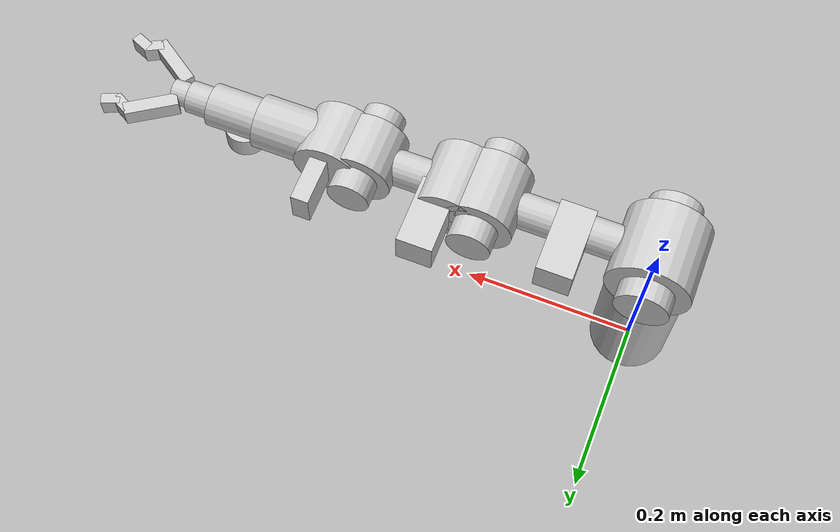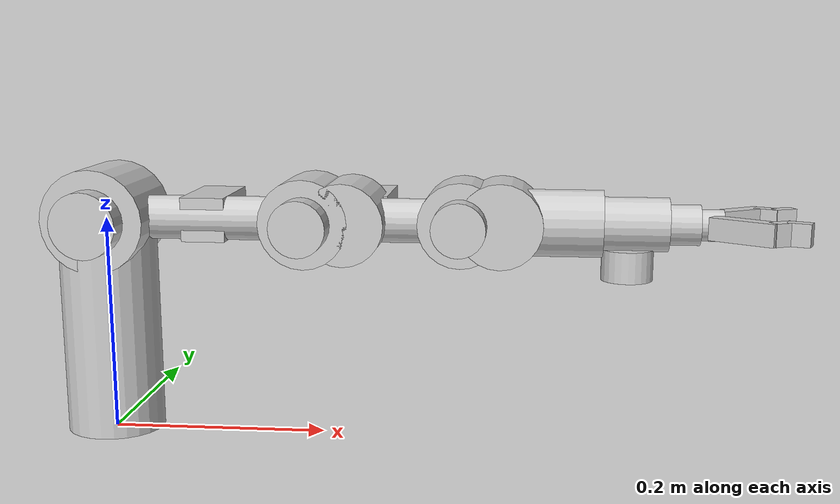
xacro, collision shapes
<?xml version="1.0"?>

<robot xmlns:xacro="http://ros.org/wiki/xacro"
      name="katana_450_6m180">

  <xacro:include filename="$(find katana_description)/urdf/transmissions.urdf.xacro"/>
  <xacro:include filename="$(find katana_description)/urdf/gazebo.urdf.xacro"/>

  <property name="M_PI" value="3.1415926535897931" />

  <!-- all values from the katana manual -->
  <property name="base_height" value="0.2015" />
  <property name="link2_length" value="0.19" />
  <property name="link3_length" value="0.139" />
  <property name="link4_length" value="0.1473" />
  <property name="link5_length" value="0.1505" />
  <property name="tool_frame_offset" value="0.075" />

  <!-- All inertial values (mass, center of mass and inertia tensor) have been
  calculated from the meshes using MeshLab -->
  <!-- the effort limits have been measured experimentally from the maximum effort the Gazebo controller
  uses in normal conditions -->

  <link name="katana_base_link">
    <visual>
      <origin xyz="0 0 0" rpy="0 0 0" />
      <geometry>
	<mesh filename="package://katana_description/meshes/katana/katana_base_link.stl"/>
      </geometry>

      <material name="grey">
	<color rgba="0.8 0.8 0.8 1"/>
      </material>
    </visual>
    <collision>
      <origin xyz="0 0 0.1" rpy="0 0 0" />
      <geometry>
	<cylinder radius="0.045" length="0.20"/>
      </geometry>
    </collision>
    <inertial>
      <mass value="1.4047990875" />
      <origin xyz="-0.000327 0.000908 0.058457"/>
      <inertia ixx="0.003000703" ixy="0.000000864" ixz="-0.000011312"
	      iyy="0.002974822" iyz="0.000036294"
	      izz="0.001434739" />
      </inertial>
    </link>

    <joint name="katana_motor1_pan_joint" type="revolute">
      <!-- Joint 1 in Katana Manual -->
      <parent link="katana_base_link"/>
      <child link="katana_motor1_pan_link" />
      <origin xyz="0 0 ${base_height}" rpy="0 0 0"/>
      <axis xyz="0 0 1"/>
      <limit effort="1.5" lower="-3.0229511" upper="3.0123429" velocity="1.190799"/>
    </joint>

    <link name="katana_motor1_pan_link">
      <visual>
	<origin xyz="0 0 ${-base_height}" rpy="0 0 0" />
	<geometry>
	  <mesh filename="package://katana_description/meshes/katana/katana_motor1_pan_link.stl"/>
	</geometry>

	<material name="grey" />
      </visual>
      <collision>
	<origin xyz="0 0 0" rpy="${M_PI/2} 0 0" />
	<geometry>
	  <cylinder radius="0.047" length="0.085"/>
	</geometry>
      </collision>
      <collision>
	<origin xyz="0 0 0" rpy="${M_PI/2} 0 0" />
	<geometry>
	  <cylinder radius="0.03" length="0.13"/>
	</geometry>
      </collision>
      <inertial>
	<mass value="0.74793301875" />
	<origin xyz="-0.000410 -0.001285 -0.016774" />
	<inertia ixx="0.001737241" ixy="0.000000421" ixz="0.000000650"
	  iyy="0.000998782" iyz="0.000016114"
	  izz="0.001349170" />
	</inertial>
      </link>

      <joint name="katana_motor2_lift_joint" type="revolute">
	<!-- Joint 2 in Katana Manual -->
	<parent link="katana_motor1_pan_link" />
	<child link="katana_motor2_lift_link" />
	<origin xyz="0 0 0" rpy="${M_PI/2} 0 0"/>
	<axis xyz="0 0 1"/>
	<limit effort="0.6" lower="-2.6012933" upper="2.1639407"  velocity="1.0"/>
      </joint>

      <link name="katana_motor2_lift_link">
	<visual>
	  <origin rpy="${-M_PI/2} 0 0" xyz="0 0 0"/>
	  <geometry>
	    <mesh filename="package://katana_description/meshes/katana/katana_motor2_lift_link.stl"/>
	  </geometry>

	  <material name="grey" />
	</visual>
	<collision>
	  <origin xyz="0.09 0 0" rpy="0 ${M_PI/2} 0" />
	  <geometry>
	    <cylinder radius="0.02" length="0.18"/>
	  </geometry>
	</collision>
	<collision>
	  <origin xyz="0.095 0.0 -0.025" rpy="0 0 0" />
	  <geometry>
	    <box size="0.04 0.04 0.085"/>
	  </geometry>
	</collision>
	<inertial>
	  <mass value="0.80174941875" />
	  <origin xyz="0.092420 0.005283 0.000172"/>
	  <inertia ixx="0.000478252" ixy="0.000081166" ixz="0.000003961"
	    iyy="0.004314636" iyz="0.000000332"
	    izz="0.004625444" />
	  </inertial>
	</link>

	<joint name="katana_motor3_lift_joint" type="revolute">
	  <!-- Joint 3 in Katana Manual -->
	  <parent link="katana_motor2_lift_link" />
	  <child  link="katana_motor3_lift_link" />
	  <origin xyz="${link2_length} 0 0" rpy="0 0 0"/>
	  <axis xyz="0 0 1"/>
	  <!-- unexplicably, the measured velocity limit of this motor is exactly half of what vel_enc2rad(180) says -->
	  <limit effort="0.25" lower="-2.1833017" upper="2.149487"  velocity="1.190799"/>
	</joint>

	<link name="katana_motor3_lift_link">
	  <visual>
	    <origin rpy="${-M_PI/2} 0 0" xyz="0 0 0"/>
	    <geometry>
	      <mesh filename="package://katana_description/meshes/katana/katana_motor3_lift_link.stl"/>
	    </geometry>

	    <material name="grey" />
	  </visual>
	  <collision>
	    <origin xyz="0.0 0 0" rpy="0 0 0" />
	    <geometry>
	      <cylinder radius="0.04" length="0.075"/>
	    </geometry>
	  </collision>
	  <collision>
	    <origin xyz="0.0 0 0" rpy="0 0 0" />
	    <geometry>
	      <cylinder radius="0.025" length="0.125"/>
	    </geometry>
	  </collision>
	  <collision>
	    <origin xyz="0.05 0.0 -0.05" rpy="0 0 0" />
	    <geometry>
	      <box size="0.04 0.04 0.08"/>
	    </geometry>
	  </collision>
	  <collision>
	    <origin xyz="0.035 0 0" rpy="0 0 0" />
	    <geometry>
	      <cylinder radius="0.037" length="0.075"/>
	    </geometry>
	  </collision>
	  <collision>
	    <origin xyz="0.06 0 0" rpy="0 ${M_PI/2} 0" />
	    <geometry>
	      <cylinder radius="0.02" length="0.12"/>
	    </geometry>
	  </collision>
	  <inertial>
	    <mass value="0.79241664375" />
	    <origin xyz="0.058036 0.008963 -0.000187"/>
	    <inertia ixx="0.001156089" ixy="0.000112877" ixz="-0.000004398"
	      iyy="0.002305646" iyz="-0.000000036"
	      izz="0.003128648" />
	    </inertial>
	  </link>

	  <joint name="katana_motor4_lift_joint" type="revolute">
	    <!-- Joint 4 in Katana Manual -->
	    <parent link="katana_motor3_lift_link" />
	    <child  link="katana_motor4_lift_link" />
	    <origin rpy="${M_PI} 0 0" xyz="${link3_length} 0 0"/>
	    <axis xyz="0 0 1"/>
	    <limit effort="0.1" lower="-2.030977" upper="1.9919797"  velocity="2.208932"/>
	  </joint>

	  <link name="katana_motor4_lift_link">
	    <visual>
	      <origin rpy="${M_PI/2} 0 0" xyz="0 0 0"/>
	      <geometry>
		<mesh filename="package://katana_description/meshes/katana/katana_motor4_lift_link.stl"/>
	      </geometry>

	      <material name="grey" />
	    </visual>
	    <collision>
	      <origin xyz="0.0 0 0" rpy="0 0 0" />
	      <geometry>
		<cylinder radius="0.038" length="0.06"/>
	      </geometry>
	    </collision>
	    <collision>
	      <origin xyz="0.0 0 0" rpy="0 0 0" />
	      <geometry>
		<cylinder radius="0.024" length="0.11"/>
	      </geometry>
	    </collision>
	    <collision>
	      <origin xyz="0.042 0.0 0.05" rpy="0 0 0" />
	      <geometry>
		<box size="0.02 0.04 0.07"/>
	      </geometry>
	    </collision>
	    <collision>
	      <origin xyz="0.035 0 0" rpy="0 0 0" />
	      <geometry>
		<cylinder radius="0.038" length="0.065"/>
	      </geometry>
	    </collision>
	    <collision>
	      <origin xyz="0.09 0 0" rpy="0 ${M_PI/2} 0" />
	      <geometry>
		<cylinder radius="0.03" length="0.07"/>
	      </geometry>
	    </collision>
	    <inertial>
	      <mass value="0.69149323125" />
	      <origin xyz="0.050401 0.005807 0.000000"/>
	      <inertia ixx="0.000765999" ixy="0.000045260" ixz="-0.000001210"
		iyy="0.001504115" iyz="0.000000147"
		izz="0.001887277" />
	      </inertial>
	    </link>

	    <joint name="katana_motor5_wrist_roll_joint" type="revolute">
	      <!-- Joint 5 in Katana Manual -->
	      <parent link="katana_motor4_lift_link" />
	      <child  link="katana_motor5_wrist_roll_link" />
	      <origin rpy="${M_PI/2} 0 ${-M_PI/2}" xyz="${link4_length} 0 0"/>
	      <axis xyz="0 0 1"/>
	      <limit effort="0.01" lower="-2.9926262" upper="3.016518"  velocity="2.208932"/>
	    </joint>

	    <link name="katana_motor5_wrist_roll_link">
	      <visual>
		<origin rpy="0 0 0" xyz="0 0 0"/>
		<geometry>
		  <mesh filename="package://katana_description/meshes/katana/katana_motor5_wrist_roll_link.stl"/>
		</geometry>

		<material name="grey" />
	      </visual>
	      <collision>
		<origin xyz="0 0 0" rpy="0 0 0" />
		<geometry>
		  <cylinder radius="0.024" length="0.07"/>
		</geometry>
	      </collision>
	      <collision>
		<origin xyz="-0.036 0 0" rpy="0 ${M_PI/2} 0" />
		<geometry>
		  <cylinder radius="0.023" length="0.028"/>
		</geometry>
	      </collision>
	      <inertial>
		<mass value="0.25622555625" />
		<origin xyz="-0.003140899 0.000013920 0.001680144"/>
		<inertia ixx="0.000120481" ixy="0.000000015" ixz="-0.000001089"
	  iyy="0.000132130" iyz="-0.000000124"
	  izz="0.000093522" />
		</inertial>
	      </link>

	      <joint name="katana_gripper_joint" type="fixed">
		<parent link="katana_motor5_wrist_roll_link" />
		<child link="katana_gripper_link" />
		<origin rpy="0 ${M_PI/2} 0" xyz="0 0 -0.0323"/>
		<origin rpy="0 ${M_PI/2} 0" xyz="0 0 -0.0323"/>
	      </joint>

	      <link name="katana_gripper_link">
		<visual>
		  <origin rpy="0 ${M_PI} 0" xyz="0 0 0"/>
		  <geometry>
		    <mesh filename="package://katana_description/meshes/katana/katana_gripper_link.stl"/>
		  </geometry>

		  <material name="grey" />
		</visual>
		<collision>
		  <origin xyz="0.015 0 0" rpy="0 ${M_PI/2} 0" />
		  <geometry>
		    <cylinder radius="0.018" length="0.03"/>
		  </geometry>
		</collision>
		<collision>
		  <origin xyz="0.04 0 0" rpy="0 ${M_PI/2} 0" />
		  <geometry>
		    <cylinder radius="0.014" length="0.02"/>
		  </geometry>
		</collision>

		<inertial>
		  <mass value="0.0552136183596" />
		  <origin xyz="-0.014379 -0.000000 0.000006"/>
		  <inertia ixx="0.000011468" ixy="0.000000000" ixz="0.000000007"
	    iyy="0.000013830" iyz="0.000000000"
	    izz="0.000011290" /></inertial>
		</link>

		<xacro:macro name="finger" params="prefix rotate">
		  <joint name="katana_${prefix}_finger_joint" type="revolute">
		    <parent link="katana_gripper_link" />
		    <child  link="katana_${prefix}_finger_link" />
		    <origin rpy="${rotate} 0 0" xyz="0.034 0 0"/>
		    <axis xyz="0 0 1"/>
		    <limit effort="0.5" lower="-0.60" upper="0.30"  velocity="0.718834"/>
		  </joint>

		  <link name="katana_${prefix}_finger_link">
		    <visual>
		      <origin rpy="0 ${M_PI} 0" xyz="0 0 0"/>
		      <geometry>
			<mesh filename="package://katana_description/meshes/katana/katana_gripper_${prefix}_finger.stl"/>
		      </geometry>

		      <material name="grey" />
		    </visual>
		    <collision>
		      <origin xyz="0.03 0.03 0" rpy="0 0 ${M_PI/8+M_PI/16}" />
		      <geometry>
			<box size="0.06 0.015 0.02"/>
		      </geometry>
		    </collision>
		    <collision>
		      <origin xyz="0.06 0.04 0" rpy="0 0 ${-M_PI/8-M_PI/32}" />
		      <geometry>
			<box size="0.022 0.012 0.02"/>
		      </geometry>
		    </collision>
		    <collision>
		      <origin xyz="0.074 0.04 0" rpy="0 0 ${M_PI/8}" />
		      <geometry>
			<box size="0.021 0.012 0.02"/>
		      </geometry>
		    </collision>
		    <inertial>
		      <mass value="0.0251722230462" />
		      <origin xyz="${0.034 + (-0.032216)} 0.025167 -.001603"/>
		      <inertia ixx="0.000005990" ixy="0.000008473" ixz="0.000001448"
		iyy="0.000019757" iyz="-0.000000996"
		izz="0.000023588" />
		      </inertial>
		    </link>
		  </xacro:macro>

		  <xacro:finger prefix="r" rotate="0" />
		  <xacro:finger prefix="l" rotate="${M_PI}" />

		  <joint name="katana_gripper_tool_frame_joint" type="fixed">
		    <parent link="katana_motor5_wrist_roll_link"/>
		    <child link="katana_gripper_tool_frame" />
		    <origin xyz="0 0 -${tool_frame_offset}" rpy="0 ${M_PI/2} 0"/>
		  </joint>

		  <link name="katana_gripper_tool_frame">
		    <!-- This is the coordinate system of the end effector (this is the position
		    used in IK); there is no actual arm part attached to this link -->

		    <!-- The fake geometry here is only present to work around https://github.com/ros-planning/moveit_core/issues/158 -->
		    <visual>
		      <origin rpy="0 0 0" xyz="-${tool_frame_offset} 0 0"/>
		      <geometry>
			<box size="0.01 0.01 0.01"/>
		      </geometry>
		      <material name="grey" />
		    </visual>
		    <collision>
		      <origin rpy="0 0 0" xyz="-${tool_frame_offset} 0 0"/>
		      <geometry>
			<box size="0.01 0.01 0.01"/>
		      </geometry>
		      <material name="grey" />
		    </collision>
		    <inertial>
		      <mass value="0.0012" />
		      <origin xyz="0 0 0"/>
		      <inertia ixx="2e-8" ixy="0.0" ixz="0.0"
		iyy="2e-8" iyz="0.0"
		izz="2e-8" />
		      </inertial>
		    </link>

		  <joint name="katana_gripper_tool_agni_frame_joint" type="fixed">
		    <parent link="katana_motor5_wrist_roll_link"/>
		    <child link="katana_gripper_tool_agni_frame" />
		    <origin xyz="0 0 -0.075" rpy="0 ${M_PI} 0"/>
		  </joint>

		  <link name="katana_gripper_tool_agni_frame">
		    <!-- This is the coordinate system of the end effector (this is the position
		    used in IK); there is no actual arm part attached to this link -->

		    <!-- The fake geometry here is only present to work around https://github.com/ros-planning/moveit_core/issues/158 -->
		    <visual>
		      <origin rpy="0 0 0" xyz="0 0 -${tool_frame_offset}"/>
		      <geometry>
			<box size="0.01 0.01 0.01"/>
		      </geometry>
		      <material name="grey" />
		    </visual>
		    <collision>
		      <origin rpy="0 0 0" xyz="0 0 -${tool_frame_offset}"/>
		      <geometry>
			<box size="0.01 0.01 0.01"/>
		      </geometry>
		      <material name="grey" />
		    </collision>
		    <inertial>
		      <mass value="0.0012" />
		      <origin xyz="0 0 0"/>
		      <inertia ixx="2e-8" ixy="0.0" ixz="0.0"
		iyy="2e-8" iyz="0.0"
		izz="2e-8" />
		      </inertial>
		    </link>
		  </robot>
